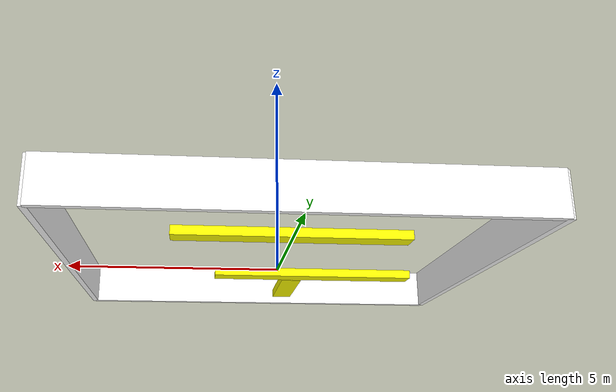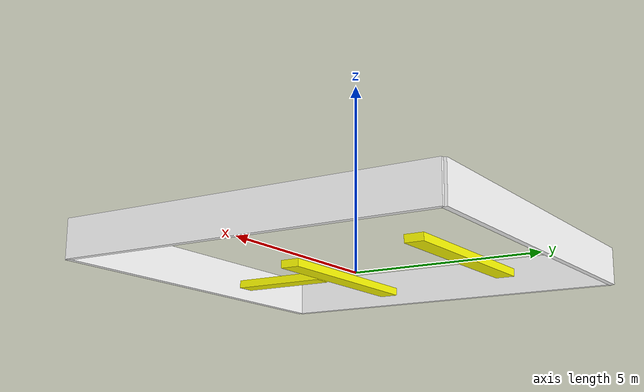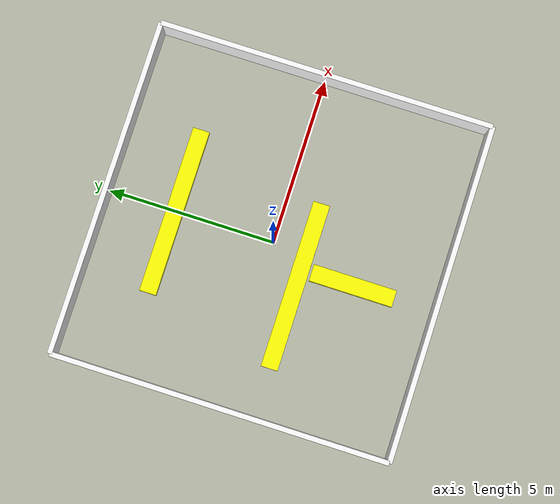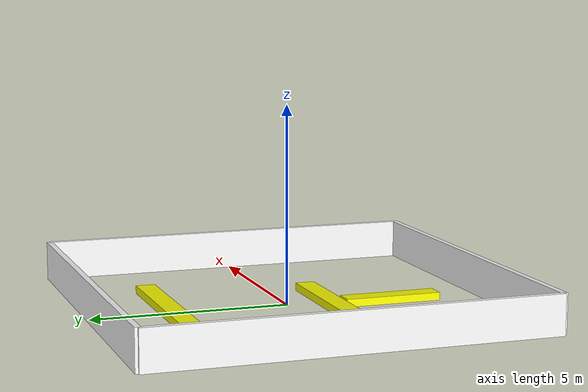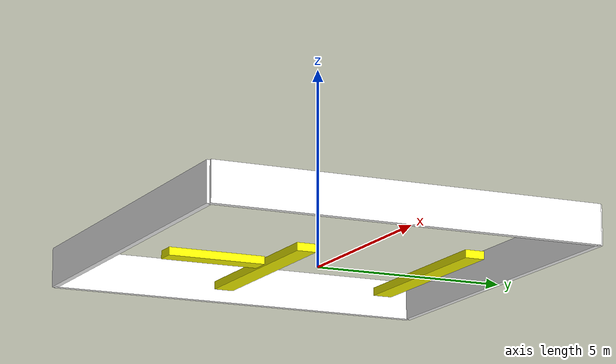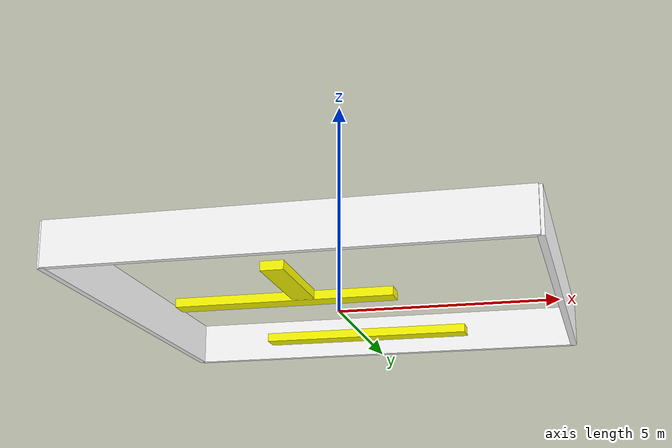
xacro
<?xml version="1.0" ?>
<robot xmlns:xacro="http://www.ros.org/wiki/xacro" name="labirint_2">

  <link name="odom"></link>

  <joint name="polygon_base_joint" type="fixed">
      <origin xyz="0.0 0.0 0.0" />
      <parent link="odom" />
      <child link="polygon_base" />
  </joint>

  <link name="polygon_base">
        <visual>
            <origin xyz="0.0 0.0 0.0" rpy="0.0 0.0 0.0" />
            <geometry>
                <box size="0.01 0.01 0.01" />
            </geometry>
        </visual>
  </link>

  <xacro:include filename="zidovi.xacro" />
  <xacro:include filename="pregrade_2.xacro" />

</robot>

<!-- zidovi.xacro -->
<robot xmlns:xacro="http://www.ros.org/wiki/xacro">

    <material name="white">
        <color rgba="1 1 1 1.0" />
    </material>

    <joint name="wall_1_joint" type="fixed">
        <origin xyz="5 0 0.5" rpy="0.0 0.0 -${pi/2}" />
        <parent link="polygon_base" />
        <child link="wall_1" />
    </joint>

    <link name="wall_1">
        <visual>
            <origin xyz="0.0 0.0 0.0" rpy="0.0 0.0 0.0" />
            <geometry>
                <box size="10 0.15 1" />
            </geometry>
            <material name="white" />
        </visual>
    </link>

    <joint name="wall_2_joint" type="fixed">
        <origin xyz="0.0 5 0.5" />
        <parent link="polygon_base" />
        <child link="wall_2" />
    </joint>

    <link name="wall_2">
        <visual>
            <origin xyz="0.0 0.0 0.0" />
            <geometry>
                <box size="10 0.15 1" />
            </geometry>
            <material name="white" />
        </visual>
    </link>

    <joint name="wall_3_joint" type="fixed">
        <origin xyz="-5 0 0.5" rpy="0.0 0.0 -${pi/2}" />
        <parent link="polygon_base" />
        <child link="wall_3" />
    </joint>

    <link name="wall_3">
        <visual>
            <origin xyz="0.0 0.0 0.0" rpy="0.0 0.0 0.0" />
            <geometry>
                <box size="10 0.15 1" />
            </geometry>
            <material name="white" />
        </visual>
    </link>

    <joint name="wall_4_joint" type="fixed">
        <origin xyz="0.0 -5 0.5" />
        <parent link="polygon_base" />
        <child link="wall_4" />
    </joint>

    <link name="wall_4">
        <visual>
            <origin xyz="0.0 0.0 0.0" />
            <geometry>
                <box size="10 0.15 1" />
            </geometry>
            <material name="white" />
        </visual>
    </link>

</robot>

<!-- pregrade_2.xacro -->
<robot xmlns:xacro="http://www.ros.org/wiki/xacro">

    <material name="yellow">
        <color rgba="1 1 0.0 1" />
    </material>

    <joint name="box_1_joint" type="fixed">
        <origin xyz="-0.5 -2.57 0.1" rpy="0.0 0.0 1.57" />
        <parent link="polygon_base" />
        <child link="box_1" />
    </joint>

    <link name="box_1">
        <visual>
            <origin xyz="0.0 0.0 0.0" rpy="0.0 0.0 0.0" />
            <geometry>
                <box size="2.5 0.5 0.2" />
            </geometry>
            <material name="yellow" />
        </visual>
    </link>

    <joint name="box_2_joint" type="fixed">
        <origin xyz="-1 -1 0.1" />
        <parent link="polygon_base" />
        <child link="box_2" />
    </joint>

    <link name="box_2">
        <visual>
            <origin xyz="0.0 0.0 0.0" rpy="0.0 0.0 0.0" />
            <geometry>
                <box size="5 0.5 0.2" />
            </geometry>
            <material name="yellow" />
        </visual>
    </link>

    <joint name="box_3_joint" type="fixed">
        <origin xyz="0 3 0.1" />
        <parent link="polygon_base" />
        <child link="box_3" />
    </joint>

    <link name="box_3">
        <visual>
            <origin xyz="0.0 0.0 0.0" rpy="0.0 0.0 0.0" />
            <geometry>
                <box size="5 0.5 0.2" />
            </geometry>
            <material name="yellow" />
        </visual>
    </link>

</robot>
